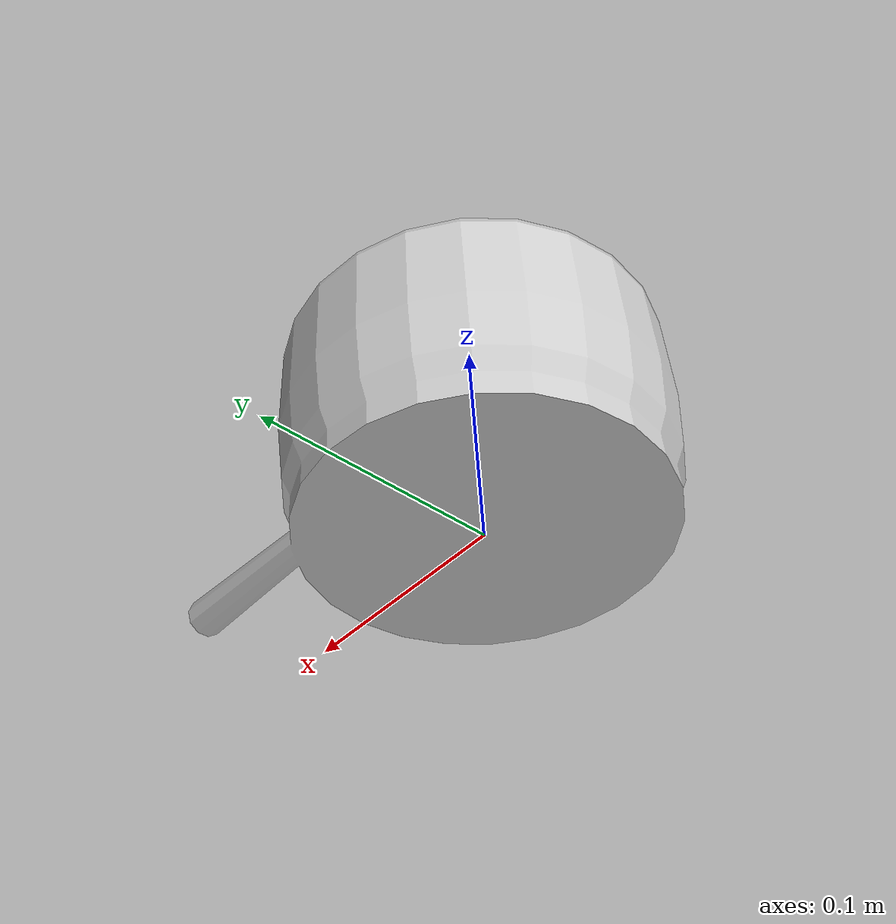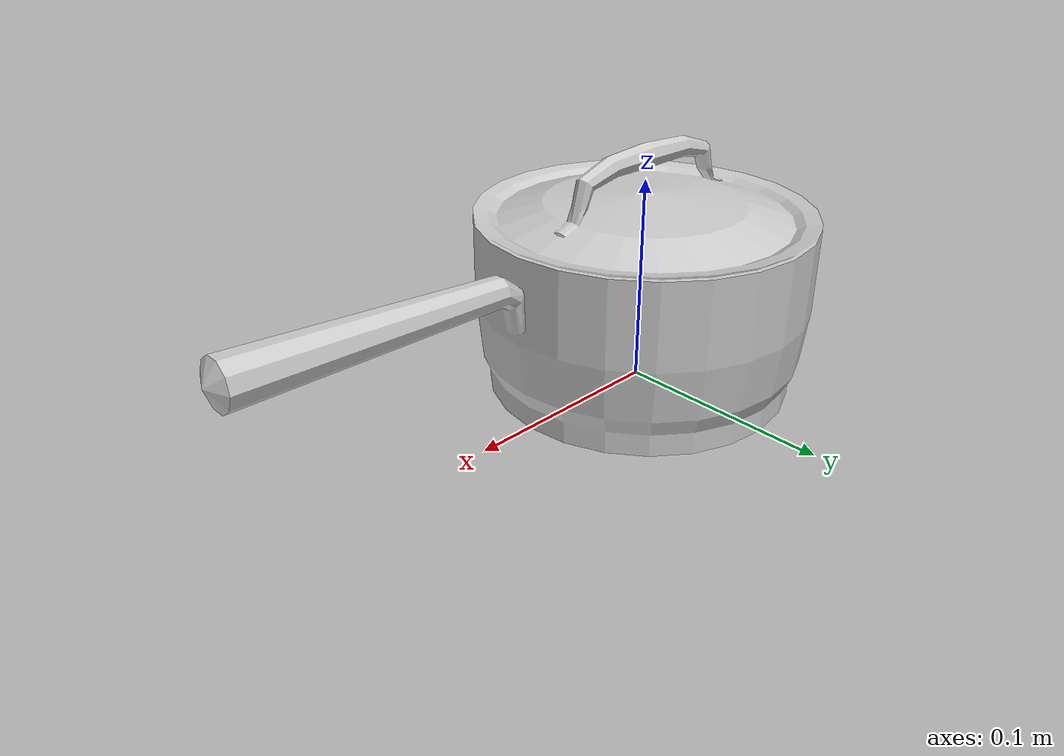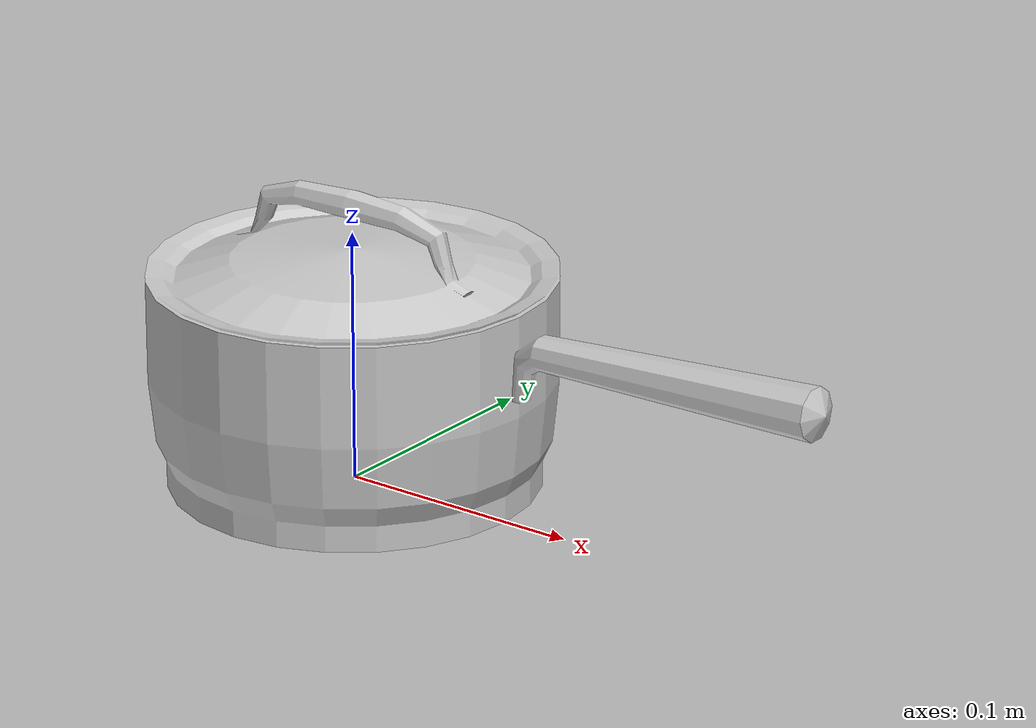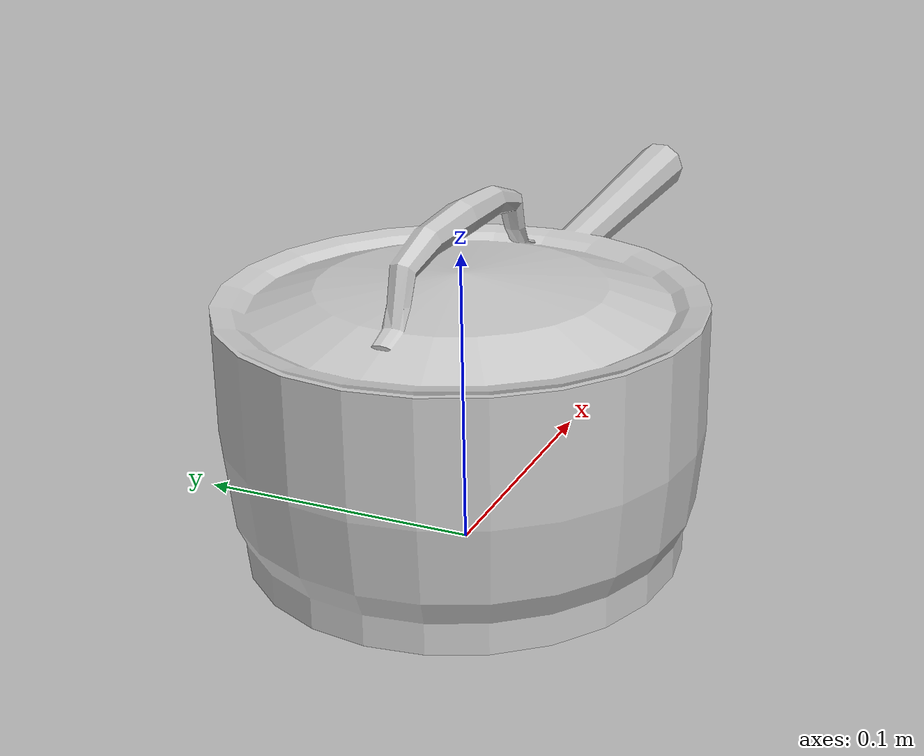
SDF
<?xml version='1.0'?>
<sdf version="1.4">
	<model name="pot_small">
		<static>1</static>
		<link name="link">
			<visual name="mesh">
				<geometry>
					<mesh>
						<uri>model://meshes/pot_small.dae</uri>
					</mesh>
				</geometry>
			</visual>
			<collision name="collider">
				<pose>0 0 0.044 0 0 0</pose>
				<geometry>
					<cylinder>
						<radius>0.08</radius>
						<length>0.088</length>
					</cylinder>
				</geometry>
			</collision>
		</link>
	</model>
</sdf>
